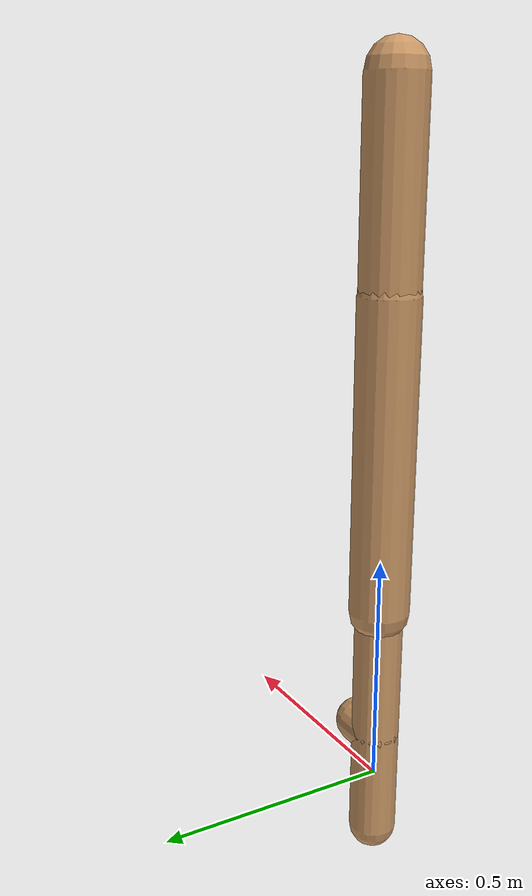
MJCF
<mujoco model="walker2d">
  <compiler angle="degree" coordinate="global" inertiafromgeom="true" />
  <default>
    <joint armature="0.01" damping=".1" limited="true" />
    <geom conaffinity="0" condim="3" contype="1" density="1000" friction="0.8 .1 .1" rgba="0.8 0.6 .4 1" />
  </default>
  <option integrator="RK4" timestep="0.002" />
  <worldbody>

    <body name="torso" pos="0 0 0.44075819932943827">
      <joint armature="0" axis="1 0 0" damping="0" limited="false" name="ignorex" pos="0 0 0" stiffness="0" type="slide" />
      <joint armature="0" axis="0 0 1" damping="0" limited="false" name="ignorez" pos="0 0 0" ref="1.25" stiffness="0" type="slide" />
      <joint armature="0" axis="0 1 0" damping="0" limited="false" name="ignorey" pos="0 0 0" stiffness="0" type="hinge" />
      <geom fromto="0 0 1.45 0 0 1.05" name="torso_geom" size="0.061763772145277986" type="capsule" />
      <body name="thigh">
        <joint axis="0 -1 0" name="thigh_joint" pos="0 0 1.05" range="-150 0" type="hinge" />
        <geom fromto="0.0 0.0 1.05 0.0 0.0 0.3912198003176345" name="thigh_geom" size="0.0638937980752517" type="capsule" />
        <body name="leg" pos="0.0 0.0 -0.2087801996823655">
          <joint axis="0 -1 0" name="leg_joint" pos="0 0 0.6" range="-150 0" type="hinge" />
          <geom fromto="0.0 0.0 0.6 0.0 0.0 -0.13197799964707274" name="leg_geom" size="0.05111503846020136" type="capsule" />
          <body name="foot" pos="0.0 0.0 -0.23197799964707275">
            <joint axis="0 -1 0" name="foot_joint" pos="0 0 0.1" range="-45 45" type="hinge" />
            <geom fromto="0.0 0.0 0.1 0.061626879235403914 0.0 0.1" name="foot_geom" size="0.05153086548640581" type="capsule" />
          </body>
        </body>
      </body>

      <body name="thigh_left">
        <joint axis="0 -1 0" name="thigh_left_joint" pos="0 0 1.05" range="-150 0" type="hinge" />
        <geom fromto="0.0 0.0 1.05 0.0 0.0 0.3912198003176345" name="thigh_left_geom" rgba=".7 .3 .6 1" size="0.0638937980752517" type="capsule" />
        <body name="leg_left" pos="0.0 0.0 -0.2087801996823655">
          <joint axis="0 -1 0" name="leg_left_joint" pos="0 0 0.6" range="-150 0" type="hinge" />
          <geom fromto="0.0 0.0 0.6 0.0 0.0 -0.13197799964707274" name="leg_left_geom" rgba=".7 .3 .6 1" size="0.05111503846020136" type="capsule" />
          <body name="foot_left" pos="0.0 0.0 -0.23197799964707275">
            <joint axis="0 -1 0" name="foot_left_joint" pos="0 0 0.1" range="-45 45" type="hinge" />
            <geom fromto="0.0 0.0 0.1 0.061626879235403914 0.0 0.1" name="foot_left_geom" rgba=".7 .3 .6 1" size="0.05153086548640581" type="capsule" />
          </body>
        </body>
      </body>
    </body>
  </worldbody>
  <actuator>

    <motor ctrllimited="true" ctrlrange="-1.0 1.0" gear="100" joint="thigh_joint" />
    <motor ctrllimited="true" ctrlrange="-1.0 1.0" gear="100" joint="leg_joint" />
    <motor ctrllimited="true" ctrlrange="-1.0 1.0" gear="100" joint="foot_joint" />
    <motor ctrllimited="true" ctrlrange="-1.0 1.0" gear="100" joint="thigh_left_joint" />
    <motor ctrllimited="true" ctrlrange="-1.0 1.0" gear="100" joint="leg_left_joint" />
    <motor ctrllimited="true" ctrlrange="-1.0 1.0" gear="100" joint="foot_left_joint" />

  </actuator>
</mujoco>
